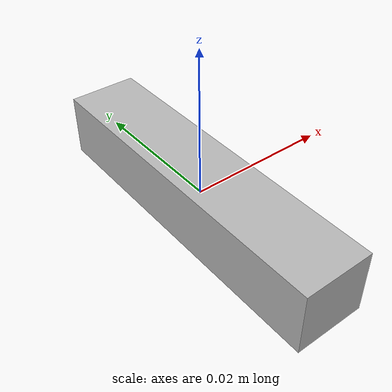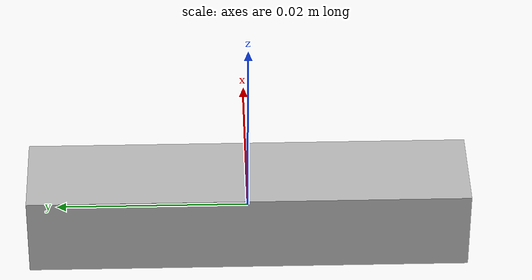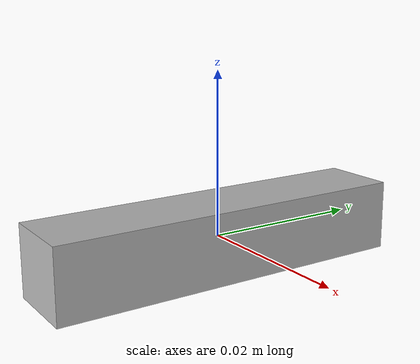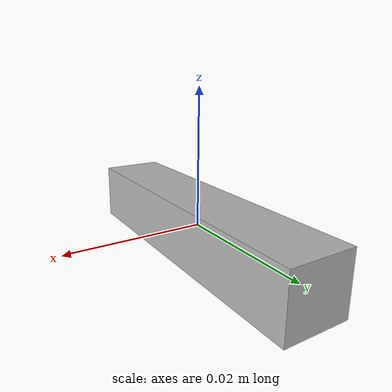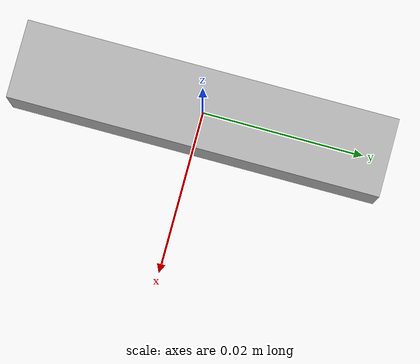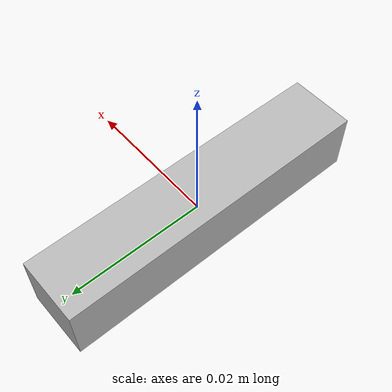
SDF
<?xml version='1.0'?>
<sdf version='1.6'>
  <model name='camera_custom'>
    <link name='link'>
      <inertial>
        <mass>0.00038552</mass>
        <inertia>
          <ixx>6.97271e-08</ixx>
          <iyy>5.46874e-09</iyy>
          <izz>7.01923e-08</izz>
          <ixy>0</ixy>
          <ixz>0</ixz>
          <iyz>0</iyz>
        </inertia>
        <pose frame=''>0 0 0 0 -0 0</pose>
      </inertial>
      <sensor name='camera_custom' type='camera'>
        <camera name='__default__'>
          <horizontal_fov>1.047</horizontal_fov>
          <image>
            <width>320</width>
            <height>240</height>
          </image>
          <clip>
            <near>0.1</near>
            <far>100</far>
          </clip>
        </camera>
        <always_on>1</always_on>
        <update_rate>30</update_rate>
        <visualize>1</visualize>
      </sensor>
      <self_collide>0</self_collide>
      <enable_wind>0</enable_wind>
      <kinematic>0</kinematic>
      <pose frame=''>0 0 0 0 -0 0</pose>
      <visual name='visual'>
        <geometry>
          <box>
            <size>0.00961 0.045744 0.008825</size>
          </box>
        </geometry>
        <material>
          <shader type='pixel'/>
        </material>
        <pose frame=''>0 0 0 0 -0 0</pose>
        <transparency>0</transparency>
        <cast_shadows>1</cast_shadows>
      </visual>
      <collision name='collision'>
        <laser_retro>0</laser_retro>
        <max_contacts>10</max_contacts>
        <pose frame=''>0 0 0 0 -0 0</pose>
        <geometry>
          <box>
            <size>0.00961 0.045744 0.008825</size>
          </box>
        </geometry>
        <surface>
          <friction>
            <ode>
              <mu>1</mu>
              <mu2>1</mu2>
              <fdir1>0 0 0</fdir1>
              <slip1>0</slip1>
              <slip2>0</slip2>
            </ode>
            <torsional>
              <coefficient>1</coefficient>
              <patch_radius>0</patch_radius>
              <surface_radius>0</surface_radius>
              <use_patch_radius>1</use_patch_radius>
              <ode>
                <slip>0</slip>
              </ode>
            </torsional>
          </friction>
          <bounce>
            <restitution_coefficient>0</restitution_coefficient>
            <threshold>1e+06</threshold>
          </bounce>
          <contact>
            <collide_without_contact>0</collide_without_contact>
            <collide_without_contact_bitmask>1</collide_without_contact_bitmask>
            <collide_bitmask>1</collide_bitmask>
            <ode>
              <soft_cfm>0</soft_cfm>
              <soft_erp>0.2</soft_erp>
              <kp>1e+13</kp>
              <kd>1</kd>
              <max_vel>0.01</max_vel>
              <min_depth>0</min_depth>
            </ode>
            <bullet>
              <split_impulse>1</split_impulse>
              <split_impulse_penetration_threshold>-0.01</split_impulse_penetration_threshold>
              <soft_cfm>0</soft_cfm>
              <soft_erp>0.2</soft_erp>
              <kp>1e+13</kp>
              <kd>1</kd>
            </bullet>
          </contact>
        </surface>
      </collision>
    </link>
    <static>0</static>
    <allow_auto_disable>1</allow_auto_disable>
  </model>
</sdf>
